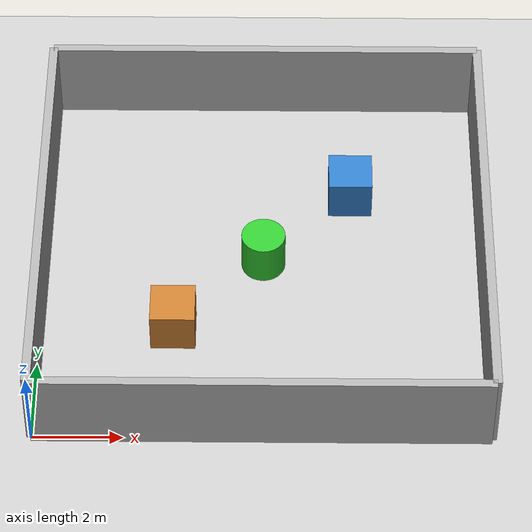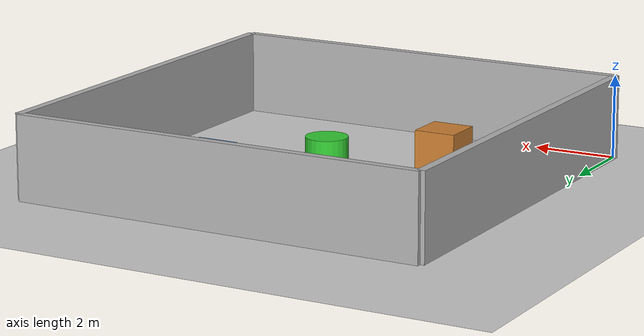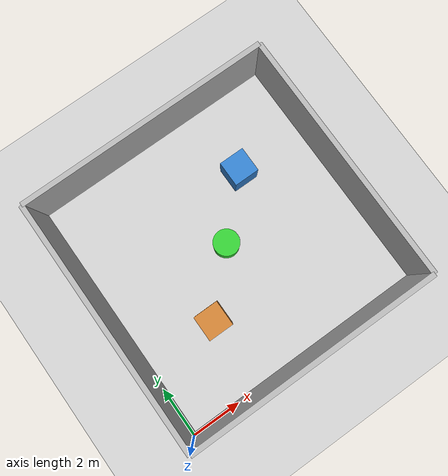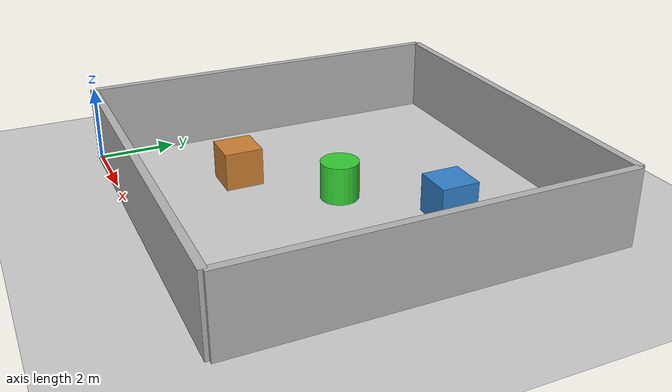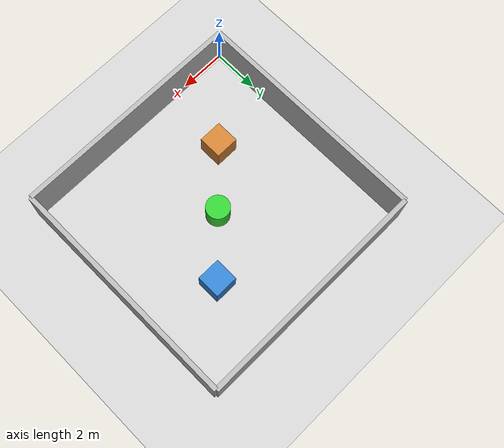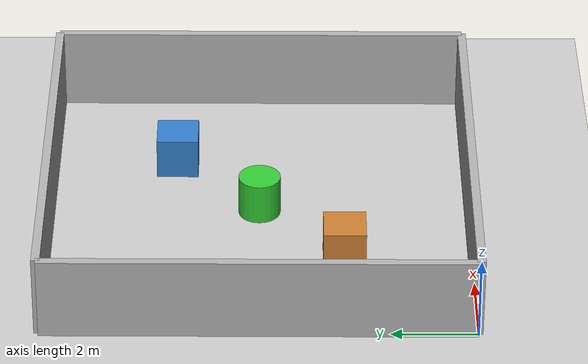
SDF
<?xml version="1.0"?>
<sdf version="1.6">
  <world name="warehouse">

    <!-- Physics engine configuration -->
    <physics type="ode">
      <max_step_size>0.001</max_step_size>
      <real_time_factor>1.0</real_time_factor>
      <real_time_update_rate>1000</real_time_update_rate>
    </physics>

    <!-- Lighting -->
    <include>
      <uri>model://sun</uri>
    </include>

    <!-- Ground plane -->
    <include>
      <uri>model://ground_plane</uri>
    </include>

    <!-- Warehouse walls -->
    <model name="warehouse_walls">
      <static>true</static>

      <!-- North wall -->
      <link name="north_wall">
        <pose>5 0 1 0 0 0</pose>
        <collision name="collision">
          <geometry>
            <box>
              <size>10 0.2 2</size>
            </box>
          </geometry>
        </collision>
        <visual name="visual">
          <geometry>
            <box>
              <size>10 0.2 2</size>
            </box>
          </geometry>
          <material>
            <ambient>0.7 0.7 0.7 1</ambient>
            <diffuse>0.7 0.7 0.7 1</diffuse>
          </material>
        </visual>
      </link>

      <!-- South wall -->
      <link name="south_wall">
        <pose>5 10 1 0 0 0</pose>
        <collision name="collision">
          <geometry>
            <box>
              <size>10 0.2 2</size>
            </box>
          </geometry>
        </collision>
        <visual name="visual">
          <geometry>
            <box>
              <size>10 0.2 2</size>
            </box>
          </geometry>
          <material>
            <ambient>0.7 0.7 0.7 1</ambient>
            <diffuse>0.7 0.7 0.7 1</diffuse>
          </material>
        </visual>
      </link>

      <!-- West wall -->
      <link name="west_wall">
        <pose>0 5 1 0 0 0</pose>
        <collision name="collision">
          <geometry>
            <box>
              <size>0.2 10 2</size>
            </box>
          </geometry>
        </collision>
        <visual name="visual">
          <geometry>
            <box>
              <size>0.2 10 2</size>
            </box>
          </geometry>
          <material>
            <ambient>0.7 0.7 0.7 1</ambient>
            <diffuse>0.7 0.7 0.7 1</diffuse>
          </material>
        </visual>
      </link>

      <!-- East wall -->
      <link name="east_wall">
        <pose>10 5 1 0 0 0</pose>
        <collision name="collision">
          <geometry>
            <box>
              <size>0.2 10 2</size>
            </box>
          </geometry>
        </collision>
        <visual name="visual">
          <geometry>
            <box>
              <size>0.2 10 2</size>
            </box>
          </geometry>
          <material>
            <ambient>0.7 0.7 0.7 1</ambient>
            <diffuse>0.7 0.7 0.7 1</diffuse>
          </material>
        </visual>
      </link>
    </model>

    <!-- Obstacle 1: Box -->
    <model name="obstacle_box_1">
      <static>true</static>
      <pose>3 3 0.5 0 0 0</pose>
      <link name="link">
        <collision name="collision">
          <geometry>
            <box>
              <size>1 1 1</size>
            </box>
          </geometry>
        </collision>
        <visual name="visual">
          <geometry>
            <box>
              <size>1 1 1</size>
            </box>
          </geometry>
          <material>
            <ambient>0.8 0.5 0.2 1</ambient>
            <diffuse>0.8 0.5 0.2 1</diffuse>
          </material>
        </visual>
      </link>
    </model>

    <!-- Obstacle 2: Box -->
    <model name="obstacle_box_2">
      <static>true</static>
      <pose>7 7 0.5 0 0 0</pose>
      <link name="link">
        <collision name="collision">
          <geometry>
            <box>
              <size>1 1 1</size>
            </box>
          </geometry>
        </collision>
        <visual name="visual">
          <geometry>
            <box>
              <size>1 1 1</size>
            </box>
          </geometry>
          <material>
            <ambient>0.2 0.5 0.8 1</ambient>
            <diffuse>0.2 0.5 0.8 1</diffuse>
          </material>
        </visual>
      </link>
    </model>

    <!-- Cylinder obstacle -->
    <model name="obstacle_cylinder">
      <static>true</static>
      <pose>5 5 0.5 0 0 0</pose>
      <link name="link">
        <collision name="collision">
          <geometry>
            <cylinder>
              <radius>0.5</radius>
              <length>1.0</length>
            </cylinder>
          </geometry>
        </collision>
        <visual name="visual">
          <geometry>
            <cylinder>
              <radius>0.5</radius>
              <length>1.0</length>
            </cylinder>
          </geometry>
          <material>
            <ambient>0.2 0.8 0.2 1</ambient>
            <diffuse>0.2 0.8 0.2 1</diffuse>
          </material>
        </visual>
      </link>
    </model>

  </world>
</sdf>
